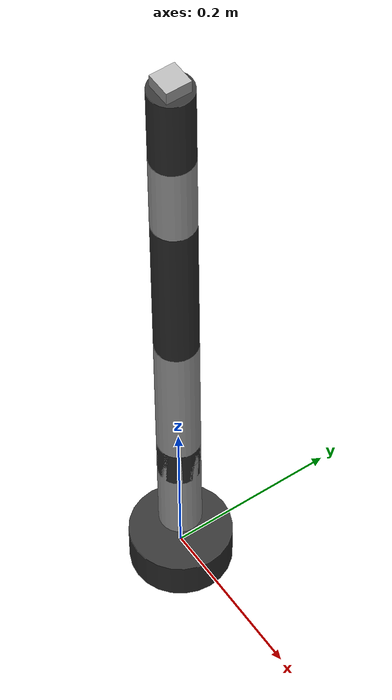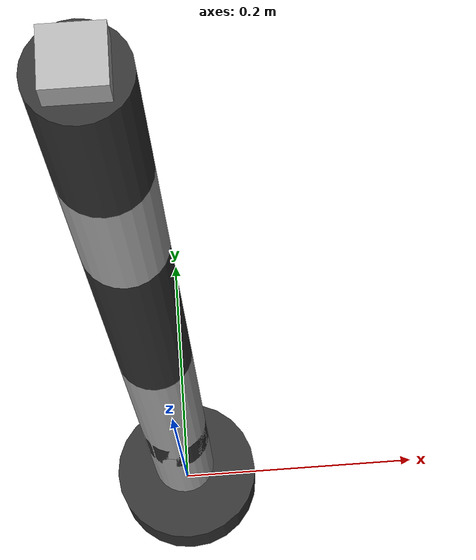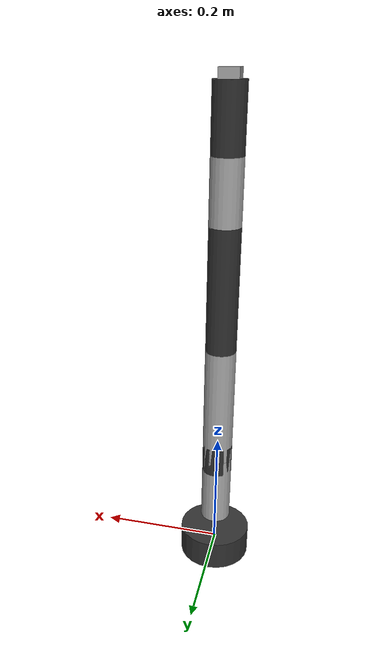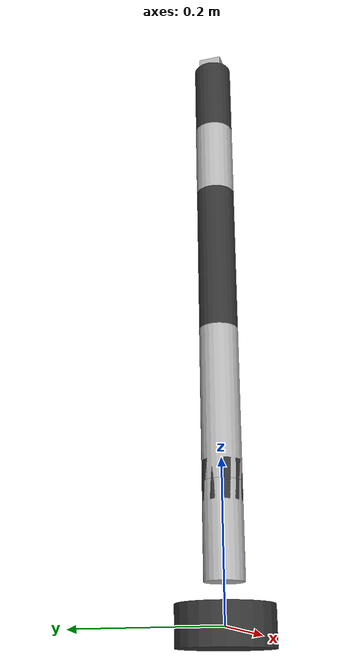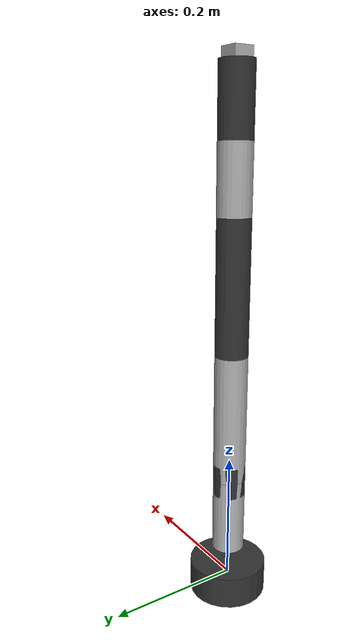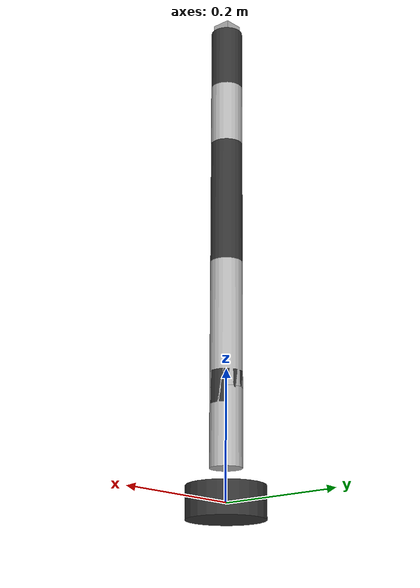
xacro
<?xml version="1.0"?>
<robot xmlns:xacro="http://www.ros.org/wiki/xacro" name="arm">
  <!-- Simple, conservative placeholder geometry for visualization and TF -->
  <xacro:property name="shoulder_length" value="0.12"/>
  <xacro:property name="upper_arm_length" value="0.20"/>
  <xacro:property name="forearm_length" value="0.20"/>
  <xacro:property name="wrist_length" value="0.10"/>
  <xacro:property name="radius" value="0.025"/>

  <material name="dark_grey">
    <color rgba="0.2 0.2 0.2 1.0"/>
  </material>
  <material name="light_grey">
    <color rgba="0.7 0.7 0.7 1.0"/>
  </material>

  <link name="base_link">
    <visual>
      <geometry>
        <cylinder length="0.05" radius="0.06"/>
      </geometry>
      <material name="dark_grey"/>
    </visual>
  </link>

  <joint name="shoulder_pitch" type="revolute">
    <parent link="base_link"/>
    <child link="shoulder_pitch_link"/>
    <origin xyz="0 0 0.05" rpy="0 0 0"/>
    <axis xyz="0 1 0"/>
    <limit effort="20.0" velocity="1.5" lower="-1.57" upper="1.57"/>
  </joint>

  <link name="shoulder_pitch_link">
    <visual>
      <origin xyz="0 0 ${shoulder_length/2}" rpy="0 0 0"/>
      <geometry>
        <cylinder length="${shoulder_length}" radius="${radius}"/>
      </geometry>
      <material name="light_grey"/>
    </visual>
  </link>

  <joint name="shoulder_yaw" type="revolute">
    <parent link="shoulder_pitch_link"/>
    <child link="shoulder_yaw_link"/>
    <origin xyz="0 0 ${shoulder_length}" rpy="0 0 0"/>
    <axis xyz="0 0 1"/>
    <limit effort="20.0" velocity="1.5" lower="-1.57" upper="1.57"/>
  </joint>

  <link name="shoulder_yaw_link">
    <visual>
      <origin xyz="0 0 0" rpy="0 0 0"/>
      <geometry>
        <cylinder length="0.05" radius="${radius}"/>
      </geometry>
      <material name="dark_grey"/>
    </visual>
  </link>

  <joint name="shoulder_roll" type="revolute">
    <parent link="shoulder_yaw_link"/>
    <child link="shoulder_roll_link"/>
    <origin xyz="0 0 0" rpy="0 0 0"/>
    <axis xyz="1 0 0"/>
    <limit effort="20.0" velocity="1.5" lower="-1.57" upper="1.57"/>
  </joint>

  <link name="shoulder_roll_link">
    <visual>
      <origin xyz="0 0 ${upper_arm_length/2}" rpy="0 0 0"/>
      <geometry>
        <cylinder length="${upper_arm_length}" radius="${radius}"/>
      </geometry>
      <material name="light_grey"/>
    </visual>
  </link>

  <joint name="elbow_flex" type="revolute">
    <parent link="shoulder_roll_link"/>
    <child link="elbow_link"/>
    <origin xyz="0 0 ${upper_arm_length}" rpy="0 0 0"/>
    <axis xyz="0 1 0"/>
    <limit effort="15.0" velocity="1.5" lower="-2.35" upper="0.52"/>
  </joint>

  <link name="elbow_link">
    <visual>
      <origin xyz="0 0 ${forearm_length/2}" rpy="0 0 0"/>
      <geometry>
        <cylinder length="${forearm_length}" radius="${radius}"/>
      </geometry>
      <material name="dark_grey"/>
    </visual>
  </link>

  <joint name="wrist_pitch" type="revolute">
    <parent link="elbow_link"/>
    <child link="wrist_pitch_link"/>
    <origin xyz="0 0 ${forearm_length}" rpy="0 0 0"/>
    <axis xyz="0 1 0"/>
    <limit effort="10.0" velocity="1.5" lower="-1.57" upper="1.57"/>
  </joint>

  <link name="wrist_pitch_link">
    <visual>
      <origin xyz="0 0 ${wrist_length/2}" rpy="0 0 0"/>
      <geometry>
        <cylinder length="${wrist_length}" radius="${radius}"/>
      </geometry>
      <material name="light_grey"/>
    </visual>
  </link>

  <joint name="wrist_roll" type="revolute">
    <parent link="wrist_pitch_link"/>
    <child link="wrist_roll_link"/>
    <origin xyz="0 0 ${wrist_length}" rpy="0 0 0"/>
    <axis xyz="1 0 0"/>
    <limit effort="10.0" velocity="1.5" lower="-3.14" upper="3.14"/>
  </joint>

  <link name="wrist_roll_link">
    <visual>
      <origin xyz="0 0 0.05" rpy="0 0 0"/>
      <geometry>
        <cylinder length="0.1" radius="${radius}"/>
      </geometry>
      <material name="dark_grey"/>
    </visual>
  </link>

  <joint name="tool0_fixed" type="fixed">
    <parent link="wrist_roll_link"/>
    <child link="tool0"/>
    <origin xyz="0 0 0.1" rpy="0 0 0"/>
  </joint>

  <link name="tool0">
    <visual>
      <geometry>
        <box size="0.03 0.03 0.03"/>
      </geometry>
      <material name="light_grey"/>
    </visual>
  </link>
</robot>
